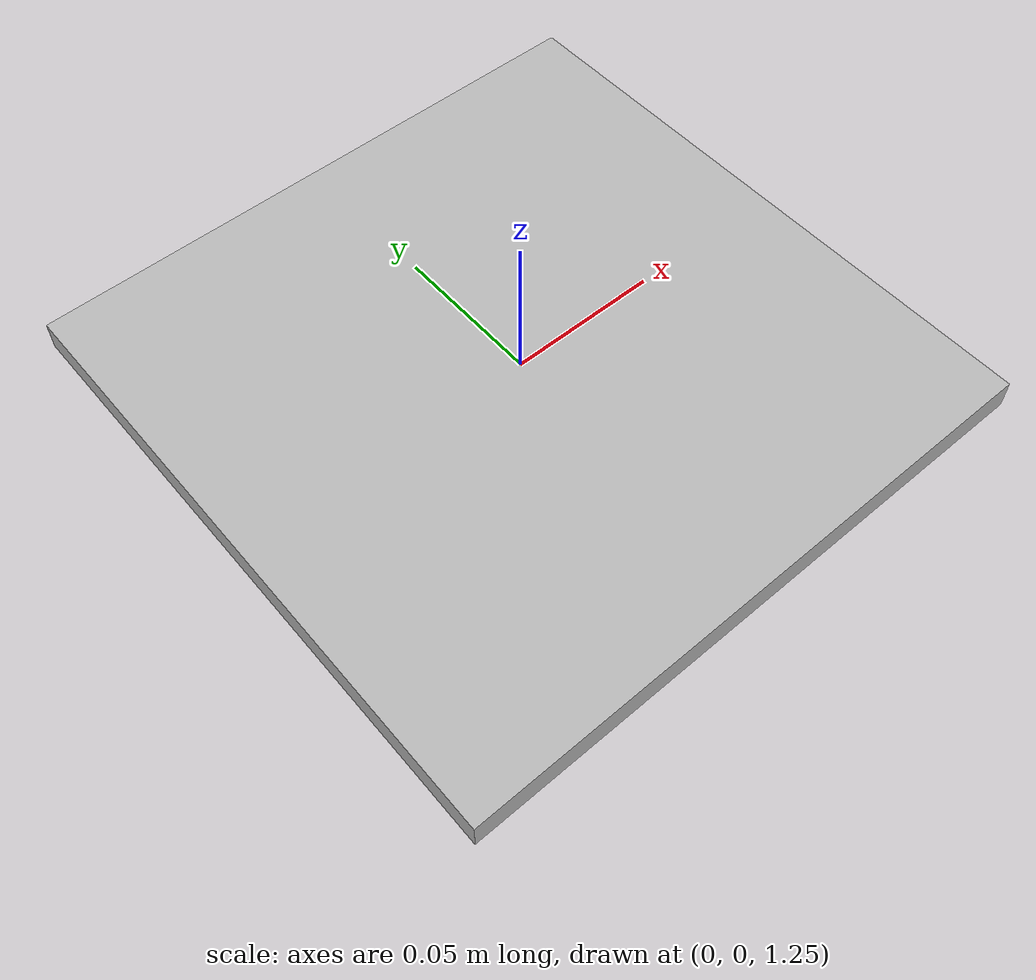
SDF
<sdf version="1.4">
  <world name="default">

    <scene>
      <ambient>0.4 0.4 0.4 1</ambient>
      <background>0.7 0.7 0.7 1</background>
      <shadows>true</shadows>
    </scene>

  <model name="aruco_tag">
      <static>true</static>
      <link name="link">
        <pose>0 0 1.25 0 0 0</pose> <!-- Position the ArUco tag at the center of the wall -->
        <visual>
          <geometry>
            <box>
              <size>0.2 0.2 0.01</size>
            </box>
          </geometry>
          <material>
            <texture>
              <filename>package://$(find camera_xacro)/textures/marker_0.png</filename>
            </texture>
          </material>
        </visual>
      </link>
    </model>

    <!-- A global light source -->
    <include>
      <uri>model://sun</uri>
    </include>

    <!-- A ground plane -->
    <include>
      <uri>model://ground_plane</uri>
    </include>

    <physics type="ode">
      <real_time_update_rate>1000.0</real_time_update_rate>
      <max_step_size>0.001</max_step_size>
      <real_time_factor>1</real_time_factor>
      <ode>
        <solver>
          <type>quick</type>
          <iters>150</iters>
          <precon_iters>0</precon_iters>
          <sor>1.400000</sor>
          <use_dynamic_moi_rescaling>1</use_dynamic_moi_rescaling>
        </solver>
        <constraints>
          <cfm>0.00001</cfm>
          <erp>0.2</erp>
          <contact_max_correcting_vel>2000.000000</contact_max_correcting_vel>
          <contact_surface_layer>0.01000</contact_surface_layer>
        </constraints>
      </ode>
    </physics>
  </world>

</sdf>
